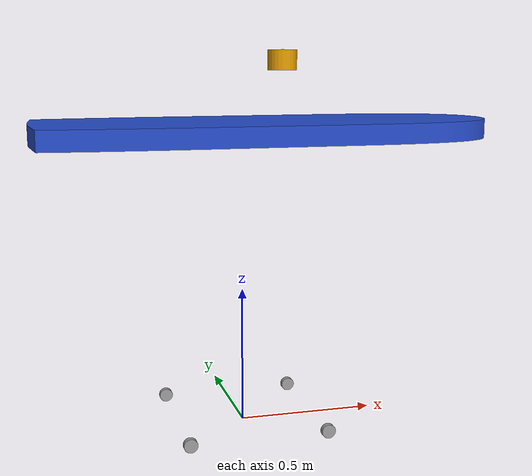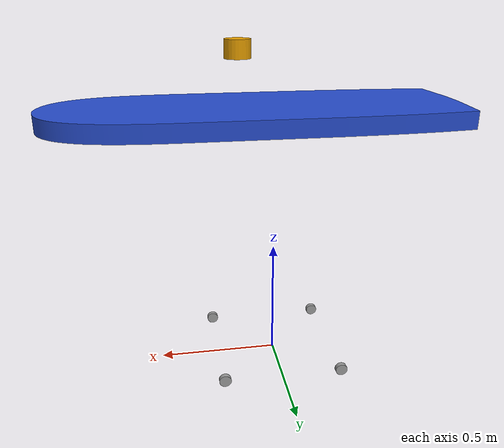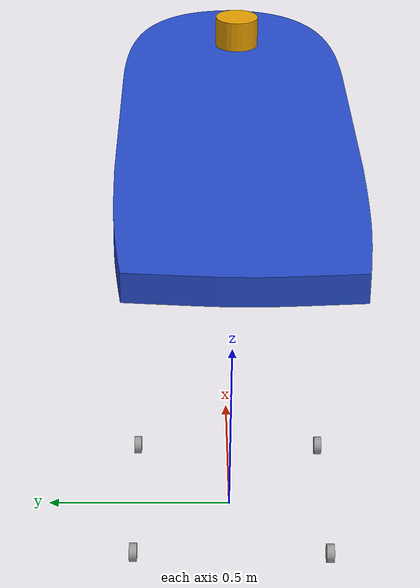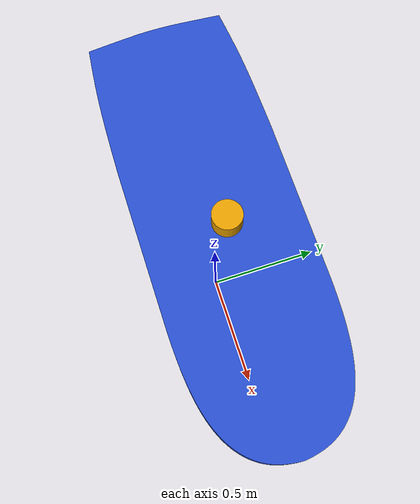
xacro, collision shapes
<?xml version='1.0'?>

<robot name="platypus" xmlns:xacro="http://www.ros.org/wiki/xacro">

  <xacro:arg name="gpu" default="false"/>
  <xacro:property name="gpu" value="$(arg gpu)" />

  <xacro:include filename="$(find platypus_gazebo)/urdf/platypus.gazebo" />

  <!-- Length along X-axis, Width along Y-axis, Height along Z-axis -->
  <xacro:property name="board_width" value="${0.582}" />
  <xacro:property name="board_length" value="${1.659}" />
  <xacro:property name="board_height" value="${0.07}" />
  <xacro:property name="board_mass" value="${5}" />

  <xacro:property name="base_x_offset" value="0" />

  <!-- inertia = 1/12*m(h^2+d^2) -->
  <xacro:property name="height_2" value="${board_height * board_height}" />
  <xacro:property name="width_2" value="${board_width * board_width}" />
  <xacro:property name="length_2" value="${board_length * board_length}" />
  <xacro:property name="board_inertia_xx" value="${board_mass/12.0 * (height_2 + width_2)}" />
  <xacro:property name="board_inertia_yy" value="${board_mass/12.0 * (height_2 + length_2)}" />
  <xacro:property name="board_inertia_zz" value="${board_mass/12.0 * (width_2 + length_2)}" />
  <xacro:property name="board_i_x_pos" value="${base_x_offset}" />
  <xacro:property name="board_i_z_pos" value="${board_height/3.0}" />

  <xacro:property name="wheel_length" value="${0.02}" />
  <xacro:property name="wheel_radius" value="${0.025}" />
  <xacro:property name="wheel_mass" value="${1}" />
  <xacro:property name="wheel_inertia" value="${1e-3}" />
  <xacro:property name="wheel_x_offset" value="${0.25}" />
  <xacro:property name="wheel_y_offset" value="${0.25}" />
  <xacro:property name="wheel_z_offset" value="${1.055}" />

  <xacro:property name="wheel_kp" value="10000.0" />
  <xacro:property name="wheel_kd" value="10.0" />
  <xacro:property name="wheel_mu1" value="1" />
  <xacro:property name="wheel_mu2" value="1" />
  <xacro:property name="wheel_slip1" value="0.2" />
  <xacro:property name="wheel_slip2" value="0" />

 <link name="base_footprint"/>

  <joint name="base_joint" type="fixed">
    <parent link="base_footprint"/>
    <child link="base_link" />
    <origin xyz="0 0 ${wheel_radius+wheel_z_offset}" rpy="0 0 0"/>
  </joint>

  <link name="base_link">
    <visual>
      <origin xyz="0 0 0.0" rpy="0 0 0"/>
      <geometry>
        <mesh filename="package://platypus_gazebo/meshes/board.stl" scale="1 1 1"/>
      </geometry>
    </visual>

    <visual>
      <origin xyz="0 0 -${board_height/2+(wheel_z_offset-(board_height/2))/2}" rpy="0 0 0"/>
      <geometry>
        <box size="${2*wheel_x_offset} ${2*wheel_y_offset} ${wheel_z_offset-(board_height/2)}"/>
      </geometry>
    </visual>

    <collision>
      <origin xyz="0 0 0" rpy="0 0 0"/>
      <geometry>
        <mesh filename="package://platypus_gazebo/meshes/board.stl" scale="1 1 1"/>
      </geometry>
    </collision>

    <inertial>
      <mass value="${board_mass}"/>
      <origin xyz="0 0 0" rpy=" 0 0 0"/>
      <inertia
          ixx="${board_inertia_xx}" ixy="0" ixz="0"
          iyy="${board_inertia_yy}" iyz="0"
          izz="${board_inertia_zz}" />
    </inertial>
  </link>

  <!-- left back wheel -->
  <joint type="continuous" name="left_back_wheel_hinge">
    <origin xyz="-${wheel_x_offset} ${wheel_y_offset+wheel_length/2} ${-wheel_z_offset}" rpy="0 0 0"/>
    <child link="left_back_wheel"/>
    <parent link="base_link"/>
    <axis xyz="0 1 0" rpy="0 0 0"/>
    <limit effort="10000" velocity="1000"/>
    <joint_properties damping="1.0" friction="1.0"/>
  </joint>

  <link name="left_back_wheel">
    <inertial>
      <mass value="${wheel_mass}"/>
      <origin xyz="0.0 0 0" rpy=" 0 1.5707 1.5707"/>
      <inertia
        ixx="${wheel_inertia}" ixy="0" ixz="0"
        iyy="${wheel_inertia}" iyz="0"
        izz="${wheel_inertia}" />
    </inertial>
    <collision name="left_back_wheel_collision">
      <origin xyz="0 0 0" rpy=" 0 1.5707 1.5707"/>
      <geometry>
        <cylinder length="${wheel_length}" radius="${wheel_radius}"/>
      </geometry>
      <surface>
        <friction>
          <fdir1>1 0 0</fdir1>
          <kp>${wheel_kp}</kp> <!-- kp and kd for rubber -->
          <kd>${wheel_kd}</kd>
          <mu>${wheel_mu1}</mu>
          <mu2>${wheel_mu2}</mu2>
          <slip1>${wheel_slip1}</slip1>
          <slip2>${wheel_slip2}</slip2>
        </friction>
      </surface>
    </collision>
    <visual name="left_back_wheel_visual">
      <origin xyz="0 0 0" rpy=" 0 1.5707 1.5707"/>
      <geometry>
        <cylinder length="${wheel_length}" radius="${wheel_radius}"/>
      </geometry>
    </visual>
  </link>

  <!-- right back wheel -->
  <joint type="continuous" name="right_back_wheel_hinge">
    <origin xyz="-${wheel_x_offset} -${wheel_y_offset+wheel_length/2} ${-wheel_z_offset}" rpy="0 0 0"/>
    <child link="right_back_wheel"/>
    <parent link="base_link"/>
    <axis xyz="0 1 0" rpy="0 0 0"/>
    <limit effort="10000" velocity="1000"/>
    <joint_properties damping="1.0" friction="1.0"/>
  </joint>

  <link name="right_back_wheel">
    <inertial>
      <mass value="${wheel_mass}"/>
      <origin xyz="0.0 0 0" rpy=" 0 1.5707 1.5707"/>
      <inertia
          ixx="${wheel_inertia}" ixy="0" ixz="0"
          iyy="${wheel_inertia}" iyz="0"
          izz="${wheel_inertia}" />
    </inertial>
    <collision name="right_back_wheel_collision">
      <origin xyz="0 0 0" rpy=" 0 1.5707 1.5707"/>
      <geometry>
        <cylinder length="${wheel_length}" radius="${wheel_radius}"/>
      </geometry>
      <surface>
        <friction>
          <fdir1>1 0 0</fdir1>
          <kp>${wheel_kp}</kp> <!-- kp and kd for rubber -->
          <kd>${wheel_kd}</kd>
          <mu>${wheel_mu1}</mu>
          <mu2>${wheel_mu2}</mu2>
          <slip1>${wheel_slip1}</slip1>
          <slip2>${wheel_slip2}</slip2>
        </friction>
      </surface>
    </collision>
    <visual name="right_back_wheel_visual">
      <origin xyz="0 0 0" rpy=" 0 1.5707 1.5707"/>
      <geometry>
        <cylinder length="${wheel_length}" radius="${wheel_radius}"/>
      </geometry>
    </visual>
  </link>

  <!-- left front wheel -->
  <joint type="continuous" name="left_front_wheel_hinge">
    <origin xyz="${wheel_x_offset} ${wheel_y_offset+wheel_length/2} ${-wheel_z_offset}" rpy="0 0 0"/>
    <child link="left_front_wheel"/>
    <parent link="base_link"/>
    <axis xyz="0 1 0" rpy="0 0 0"/>
    <limit effort="10000" velocity="1000"/>
    <joint_properties damping="1.0" friction="1.0"/>
  </joint>

  <link name="left_front_wheel">
    <inertial>
      <mass value="${wheel_mass}"/>
      <origin xyz="0.0 0 0" rpy=" 0 1.5707 1.5707"/>
      <inertia
        ixx="${wheel_inertia}" ixy="0" ixz="0"
        iyy="${wheel_inertia}" iyz="0"
        izz="${wheel_inertia}" />
    </inertial>
    <collision name="left_front_wheel_collision">
      <origin xyz="0 0 0" rpy=" 0 1.5707 1.5707"/>
      <geometry>
        <cylinder length="${wheel_length}" radius="${wheel_radius}"/>
      </geometry>
      <surface>
        <friction>
          <fdir1>1 0 0</fdir1>
          <kp>${wheel_kp}</kp> <!-- kp and kd for rubber -->
          <kd>${wheel_kd}</kd>
          <mu>${wheel_mu1}</mu>
          <mu2>${wheel_mu2}</mu2>
          <slip1>${wheel_slip1}</slip1>
          <slip2>${wheel_slip2}</slip2>
        </friction>
      </surface>
    </collision>
    <visual name="left_front_wheel_visual">
      <origin xyz="0 0 0" rpy=" 0 1.5707 1.5707"/>
      <geometry>
        <cylinder length="${wheel_length}" radius="${wheel_radius}"/>
      </geometry>
    </visual>
  </link>

  <!-- right front wheel -->
  <joint type="continuous" name="right_front_wheel_hinge">
    <origin xyz="${wheel_x_offset} -${wheel_y_offset+wheel_length/2} ${-wheel_z_offset}" rpy="0 0 0"/>
    <child link="right_front_wheel"/>
    <parent link="base_link"/>
    <axis xyz="0 1 0" rpy="0 0 0"/>
    <limit effort="10000" velocity="1000"/>
    <joint_properties damping="1.0" friction="1.0"/>
  </joint>

  <link name="right_front_wheel">
    <inertial>
      <mass value="${wheel_mass}"/>
      <origin xyz="0.0 0 0" rpy=" 0 1.5707 1.5707"/>
      <inertia
          ixx="${wheel_inertia}" ixy="0" ixz="0"
          iyy="${wheel_inertia}" iyz="0"
          izz="${wheel_inertia}" />
    </inertial>
    <collision name="right_front_wheel_collision">
      <origin xyz="0 0 0" rpy=" 0 1.5707 1.5707"/>
      <geometry>
        <cylinder length="${wheel_length}" radius="${wheel_radius}"/>
      </geometry>
      <surface>
        <friction>
          <fdir1>1 0 0</fdir1>
          <kp>${wheel_kp}</kp> <!-- kp and kd for rubber -->
          <kd>${wheel_kd}</kd>
          <mu>${wheel_mu1}</mu>
          <mu2>${wheel_mu2}</mu2>
          <slip1>${wheel_slip1}</slip1>
          <slip2>${wheel_slip2}</slip2>
        </friction>
      </surface>
    </collision>
    <visual name="right_front_wheel_visual">
      <origin xyz="0 0 0" rpy=" 0 1.5707 1.5707"/>
      <geometry>
        <cylinder length="${wheel_length}" radius="${wheel_radius}"/>
      </geometry>
    </visual>
  </link>

  <joint name="base_to_board" type="fixed">
    <parent link="base_link"/>
    <child link="board" />
    <origin xyz="0 0 ${board_height/2}" rpy="0 0 0"/>
  </joint>

  <link name="board"/>

  <joint name="board_to_lidar_base" type="fixed">
    <parent link="board"/>
    <child link="lidar_base" />
    <origin xyz="0.15 0 0" rpy="0 0 0"/>

  </joint>

  <link name="lidar_base">
    <visual>
      <origin xyz="0 0 0.088" rpy=" 0 0 0"/>
      <geometry>
        <cylinder length="0.176" radius="0.05"/>
      </geometry>
    </visual>
  </link>

  <xacro:include filename="$(find velodyne_description)/urdf/VLP-16.urdf.xacro"/>
  <xacro:VLP-16 parent="lidar_base" name="velodyne" topic="/velodyne_points" hz="10" samples="440" gpu="${gpu}">
    <origin xyz="0 0 0.176" rpy="0 0 0" />
  </xacro:VLP-16>

</robot>

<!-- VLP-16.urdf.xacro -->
<robot xmlns:xacro="http://www.ros.org/wiki/xacro" name="VLP-16">
  <xacro:property name="M_PI" value="3.1415926535897931" />
  <xacro:macro name="VLP-16" params="*origin is_sim:=true parent:=base_link name:=velodyne tf_prefix:='' topic:=/velodyne_points organize_cloud:=false hz:=10 lasers:=16 samples:=1875 collision_range:=0.3 min_range:=0.0 max_range:=100.0 noise:=0.008 min_angle:=-${M_PI} max_angle:=${M_PI} gpu:=false">

    <joint name="${name}_base_mount_joint" type="fixed">
      <xacro:insert_block name="origin" />
      <parent link="${parent}"/>
      <child link="${name}_base_link"/>
    </joint>

    <link name="${name}_base_link">
      <inertial>
        <mass value="0.83"/>
        <origin xyz="0 0 0.03585"/>
        <inertia ixx="${(0.83 * (3.0*0.0516*0.0516 + 0.0717*0.0717)) / 12.0}" ixy="0" ixz="0"
          iyy="${(0.83 * (3.0*0.0516*0.0516 + 0.0717*0.0717)) / 12.0}" iyz="0"
          izz="${0.5 * 0.83 * (0.0516*0.0516)}"/>
      </inertial>
      <visual>
        <geometry>
          <mesh filename="package://velodyne_description/meshes/VLP16_base_1.dae" />
        </geometry>
      </visual>
      <visual>
        <geometry>
          <mesh filename="package://velodyne_description/meshes/VLP16_base_2.dae" />
        </geometry>
      </visual>
      <collision>
        <origin rpy="0 0 0" xyz="0 0 0.03585"/>
        <geometry>
          <cylinder radius="0.0516" length="0.0717"/>
        </geometry>
      </collision>
    </link>

    <joint name="${name}_base_scan_joint" type="fixed" >
      <origin xyz="0 0 0.0377" rpy="0 0 0" />
      <parent link="${name}_base_link" />
      <child link="${name}"/>
    </joint>

    <link name="${name}">
      <inertial>
        <mass value="0.01"/>
        <origin xyz="0 0 0"/>
        <inertia ixx="1e-7" ixy="0" ixz="0" iyy="1e-7" iyz="0" izz="1e-7"/>
      </inertial>
      <visual>
        <origin xyz="0 0 -0.0377" />
        <geometry>
          <mesh filename="package://velodyne_description/meshes/VLP16_scan.dae" />
        </geometry>
      </visual>
      <collision>
        <geometry>
          <sphere radius="0"/>
        </geometry>
      </collision>
    </link>

    <!-- Gazebo requires the velodyne_gazebo_plugins package -->
    <xacro:if value="${is_sim}">
        <gazebo reference="${name}">
            <xacro:if value="${gpu}">
                <sensor type="gpu_ray" name="${name}-VLP16">
                <pose>0 0 0 0 0 0</pose>
                <visualize>false</visualize>
                <update_rate>${hz}</update_rate>
                <ray>
                    <scan>
                    <horizontal>
                        <samples>${samples}</samples>
                        <resolution>1</resolution>
                        <min_angle>${min_angle}</min_angle>
                        <max_angle>${max_angle}</max_angle>
                    </horizontal>
                    <vertical>
                        <samples>${lasers}</samples>
                        <resolution>1</resolution>
                        <min_angle>-${15.0*M_PI/180.0}</min_angle>
                        <max_angle> ${15.0*M_PI/180.0}</max_angle>
                    </vertical>
                    </scan>
                    <range>
                    <min>${collision_range}</min>
                    <max>${max_range+1}</max>
                    <resolution>0.001</resolution>
                    </range>
                    <noise>
                    <type>gaussian</type>
                    <mean>0.0</mean>
                    <stddev>0.0</stddev>
                    </noise>
                </ray>
                <plugin name="gazebo_ros_laser_controller" filename="libgazebo_ros_velodyne_laser.so">
                    <ros>
                    <namespace>/${name}</namespace>
                    <remapping>~/out:=${topic}</remapping>
                    </ros>
                    <tf_prefix>${tf_prefix}</tf_prefix>
                    <frame_name>${name}</frame_name>
                    <organize_cloud>${organize_cloud}</organize_cloud>
                    <min_range>${min_range}</min_range>
                    <max_range>${max_range}</max_range>
                    <gaussian_noise>${noise}</gaussian_noise>
                </plugin>
                </sensor>
            </xacro:if>
            <xacro:unless value="${gpu}">
                <sensor type="ray" name="${name}-VLP16">
                <pose>0 0 0 0 0 0</pose>
                <visualize>false</visualize>
                <update_rate>${hz}</update_rate>
                <ray>
                    <scan>
                    <horizontal>
                        <samples>${samples}</samples>
                        <resolution>1</resolution>
                        <min_angle>${min_angle}</min_angle>
                        <max_angle>${max_angle}</max_angle>
                    </horizontal>
                    <vertical>
                        <samples>${lasers}</samples>
                        <resolution>1</resolution>
                        <min_angle>-${15.0*M_PI/180.0}</min_angle>
                        <max_angle> ${15.0*M_PI/180.0}</max_angle>
                    </vertical>
                    </scan>
                    <range>
                    <min>${collision_range}</min>
                    <max>${max_range+1}</max>
                    <resolution>0.001</resolution>
                    </range>
                    <noise>
                    <type>gaussian</type>
                    <mean>0.0</mean>
                    <stddev>0.0</stddev>
                    </noise>
                </ray>
                <plugin name="gazebo_ros_laser_controller" filename="libgazebo_ros_velodyne_laser.so">
                    <ros>
                    <namespace>/${name}</namespace>
                    <remapping>~/out:=${topic}</remapping>
                    </ros>
                    <tf_prefix>${tf_prefix}</tf_prefix>
                    <frame_name>${name}</frame_name>
                    <organize_cloud>${organize_cloud}</organize_cloud>
                    <min_range>${min_range}</min_range>
                    <max_range>${max_range}</max_range>
                    <gaussian_noise>${noise}</gaussian_noise>
                </plugin>
                </sensor>
            </xacro:unless>
        </gazebo>
    </xacro:if>

  </xacro:macro>
</robot>
